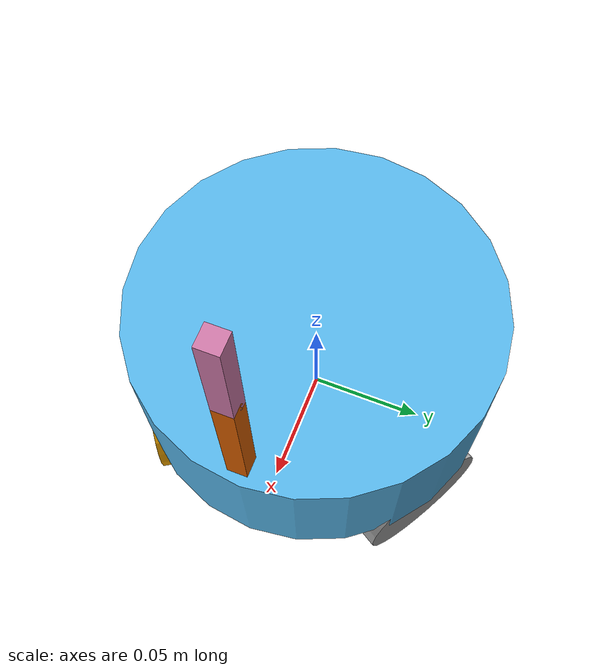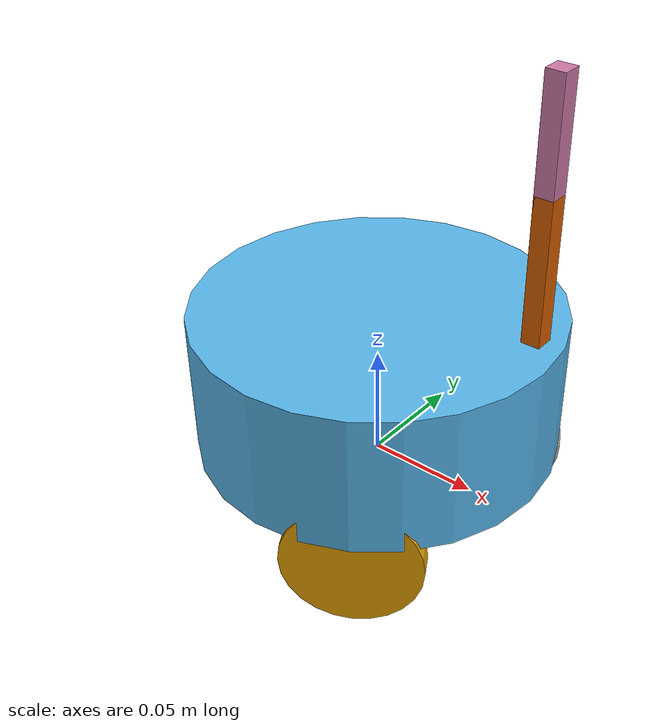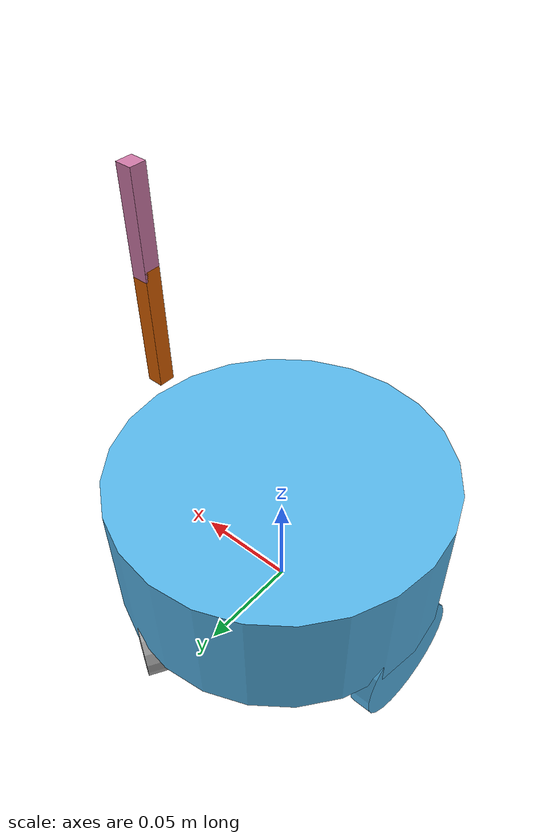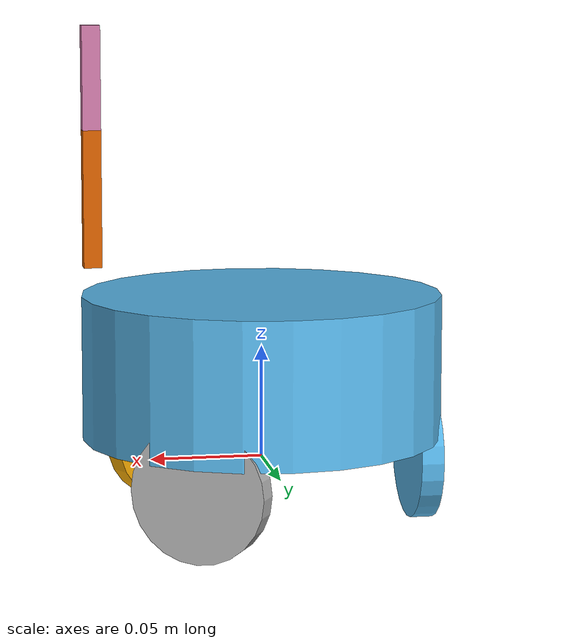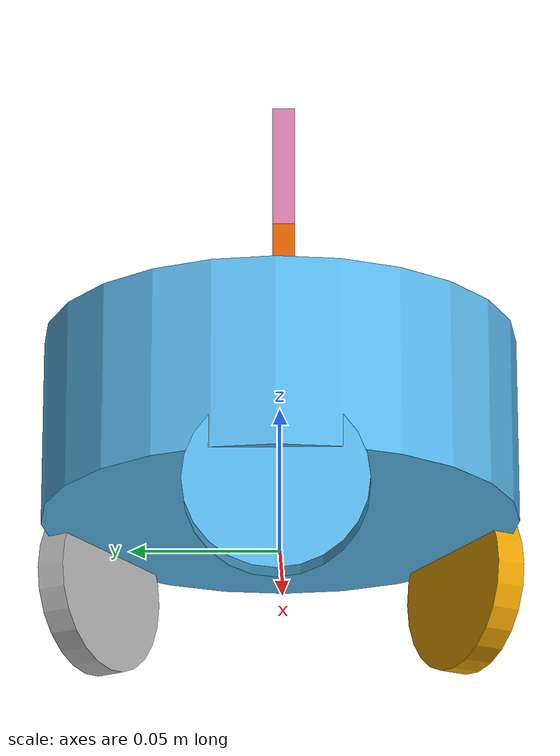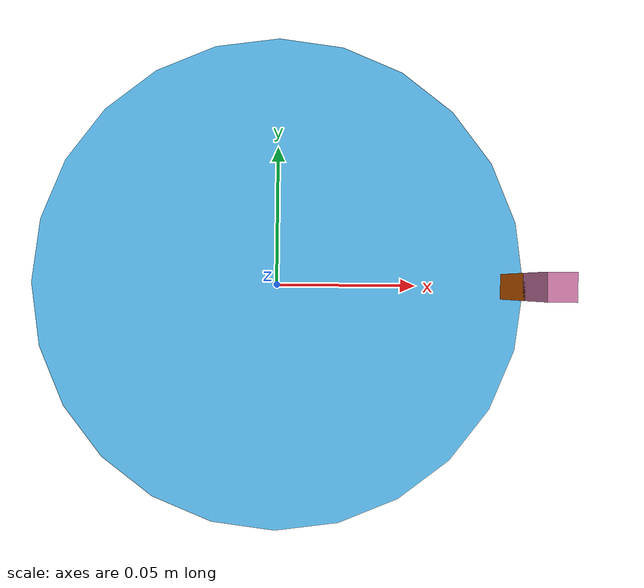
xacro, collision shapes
<?xml version="1.0"?>
<robot xmlns:xacro="http://www.ros.org/wiki/xacro" name="hb_bot">

    <!-- ================= GLOBAL PARAMETERS ================= -->
    <xacro:property name="wheel_mass" value="0.05"/>
    <xacro:property name="wheel_radius" value="0.03"/>
    <xacro:property name="wheel_thickness" value="0.01"/>

    <!-- ================= INERTIA MACROS ================= -->

    <xacro:macro name="cylinder_inertia" params="m r h">
        <inertia
            ixx="${m*(3*r*r + h*h)/12}" ixy="0" ixz="0"
            iyy="${m*(3*r*r + h*h)/12}" iyz="0"
            izz="${m*r*r/2}" />
    </xacro:macro>

    <xacro:macro name="box_inertia" params="m x y z">
        <inertia
            ixx="${m*(y*y + z*z)/12}" ixy="0" ixz="0"
            iyy="${m*(x*x + z*z)/12}" iyz="0"
            izz="${m*(x*x + y*y)/12}" />
    </xacro:macro>

    <!-- ================= WHEEL MACRO ================= -->

    <xacro:macro name="rim_macro" params="name xyz rpy mass radius thickness">

        <link name="rim_${name}_link">

            <inertial>
                <origin xyz="0 0 0"/>
                <mass value="${mass}"/>
                <xacro:cylinder_inertia m="${mass}" r="${radius}" h="${thickness}"/>
            </inertial>

            <visual>
                <geometry>
                    <mesh filename="file:///home/deepanshu/My_ROS/src/r_bot/description/meshes/wheels.dae"/>
                </geometry>
            </visual>

            <collision>
                <geometry>
                    <cylinder radius="${radius}" length="${thickness}"/>
                </geometry>
            </collision>

        </link>

        <joint name="rim_${name}_joint" type="continuous">
            <parent link="base_link"/>
            <child link="rim_${name}_link"/>
            <axis xyz="0 0 1"/>
            <limit effort="1.0" velocity="10.0"/>
            <origin xyz="${xyz}" rpy="${rpy}"/>
        </joint>

    </xacro:macro>

    <!-- ================= BASE ================= -->

    <link name="root_link"/>

    <link name="base_link">

        <visual>
            <geometry>
                <mesh filename="file:///home/deepanshu/My_ROS/src/r_bot/description/meshes/hb_crystal.dae"/>
            </geometry>
        </visual>

        <collision>
            <origin xyz="0 0 0.042"/>
            <geometry>
                <cylinder length="0.064" radius="0.08"/>
            </geometry>
        </collision>

        <inertial>
            <origin xyz="0 0 0"/>
            <mass value="0.15"/>
            <xacro:cylinder_inertia m="0.15" r="0.074" h="0.03"/>
        </inertial>

    </link>

    <joint name="root_to_base" type="fixed">
        <parent link="root_link"/>
        <child link="base_link"/>
    </joint>

    <!-- BASE_FOOTPRINT LINK -->

    <joint name="base_footprint_joint" type="fixed">
        <parent link="base_link"/>
        <child link="base_footprint"/>
        <origin xyz="0 0 0" rpy="0 0 0"/>
    </joint>

    <link name="base_footprint">
    </link>

    <!-- ================= ARM ================= -->

    <link name="chassis_link"/>
    <link name="arm_root_link"/>

    <link name="arm_link_1">

        <visual>
            <geometry>
                <mesh filename="file:///home/deepanshu/My_ROS/src/r_bot/description/meshes/arm_link.dae"/>
            </geometry>
        </visual>

        <collision>
            <origin xyz="0 0 0.02472"/>
            <geometry>
                <box size="0.008 0.008 0.06"/>
            </geometry>
        </collision>

        <inertial>
            <mass value="0.001"/>
            <xacro:cylinder_inertia m="0.001" r="0.025" h="0.05"/>
        </inertial>

    </link>

    <link name="arm_link_2">

        <visual>
            <geometry>
                <mesh filename="file:///home/deepanshu/My_ROS/src/r_bot/description/meshes/arm_elbow.dae"/>
            </geometry>
        </visual>

        <collision>
            <origin xyz="0 0 0.025"/>
            <geometry>
                <box size="0.008 0.008 0.05"/>
            </geometry>
        </collision>

        <inertial>
            <mass value="0.001"/>
            <xacro:cylinder_inertia m="0.001" r="0.025" h="0.05"/>
        </inertial>

    </link>

    <!-- Fixed arm chain -->
    <joint name="base_to_chassis" type="fixed">
        <parent link="base_link"/>
        <child link="chassis_link"/>
        <origin xyz="0 0 0.0795"/>
    </joint>

    <joint name="chassis_to_arm_base" type="fixed">
        <parent link="chassis_link"/>
        <child link="arm_root_link"/>
        <origin xyz="0.075 0 0"/>
    </joint>

    <joint name="arm_base" type="fixed">
        <parent link="arm_root_link"/>
        <child link="arm_link_1"/>
        <origin xyz="0 0 0.013"/>
    </joint>

    <joint name="arm_elbow" type="fixed">
        <parent link="arm_link_1"/>
        <child link="arm_link_2"/>
        <origin xyz="0 0 0.05"/>
    </joint>

    <!-- ================= WHEELS ================= -->

    <xacro:rim_macro
        name="left"
        xyz="0.03600001399230441 0.06235382099401676 -0.001"
        rpy="1.570796326794896 0 -0.523599"
        mass="${wheel_mass}"
        radius="${wheel_radius}"
        thickness="${wheel_thickness}"/>

    <xacro:rim_macro
        name="right"
        xyz="0.03600001399230441 -0.06235382099401676 -0.001"
        rpy="1.570796326794896 0 0.523599"
        mass="${wheel_mass}"
        radius="${wheel_radius}"
        thickness="${wheel_thickness}"/>

    <xacro:rim_macro
        name="back"
        xyz="-0.072 0 0"
        rpy="1.570796326794896 0 1.570796326794896"
        mass="${wheel_mass}"
        radius="${wheel_radius}"
        thickness="${wheel_thickness}"/>

    <!-- ================= CONTROL ================= -->

    <ros2_control name="RobotSystem" type="system">

        <hardware>
            <plugin>gazebo_ros2_control/GazeboSystem</plugin>
        </hardware>

        <joint name="rim_left_joint">
            <command_interface name="velocity"/>
            <state_interface name="position"/>
            <state_interface name="velocity"/>
        </joint>

        <joint name="rim_right_joint">
            <command_interface name="velocity"/>
            <state_interface name="position"/>
            <state_interface name="velocity"/>
        </joint>

        <joint name="rim_back_joint">
            <command_interface name="velocity"/>
            <state_interface name="position"/>
            <state_interface name="velocity"/>
        </joint>

    </ros2_control>

    <!-- ================= GAZEBO ================= -->

    <gazebo>
        <plugin name="gazebo_ros2_control" filename="libgazebo_ros2_control.so">
            <parameters>/home/deepanshu/My_ROS/src/r_bot/config/Control.yaml</parameters>
        </plugin>
    </gazebo>

</robot>
